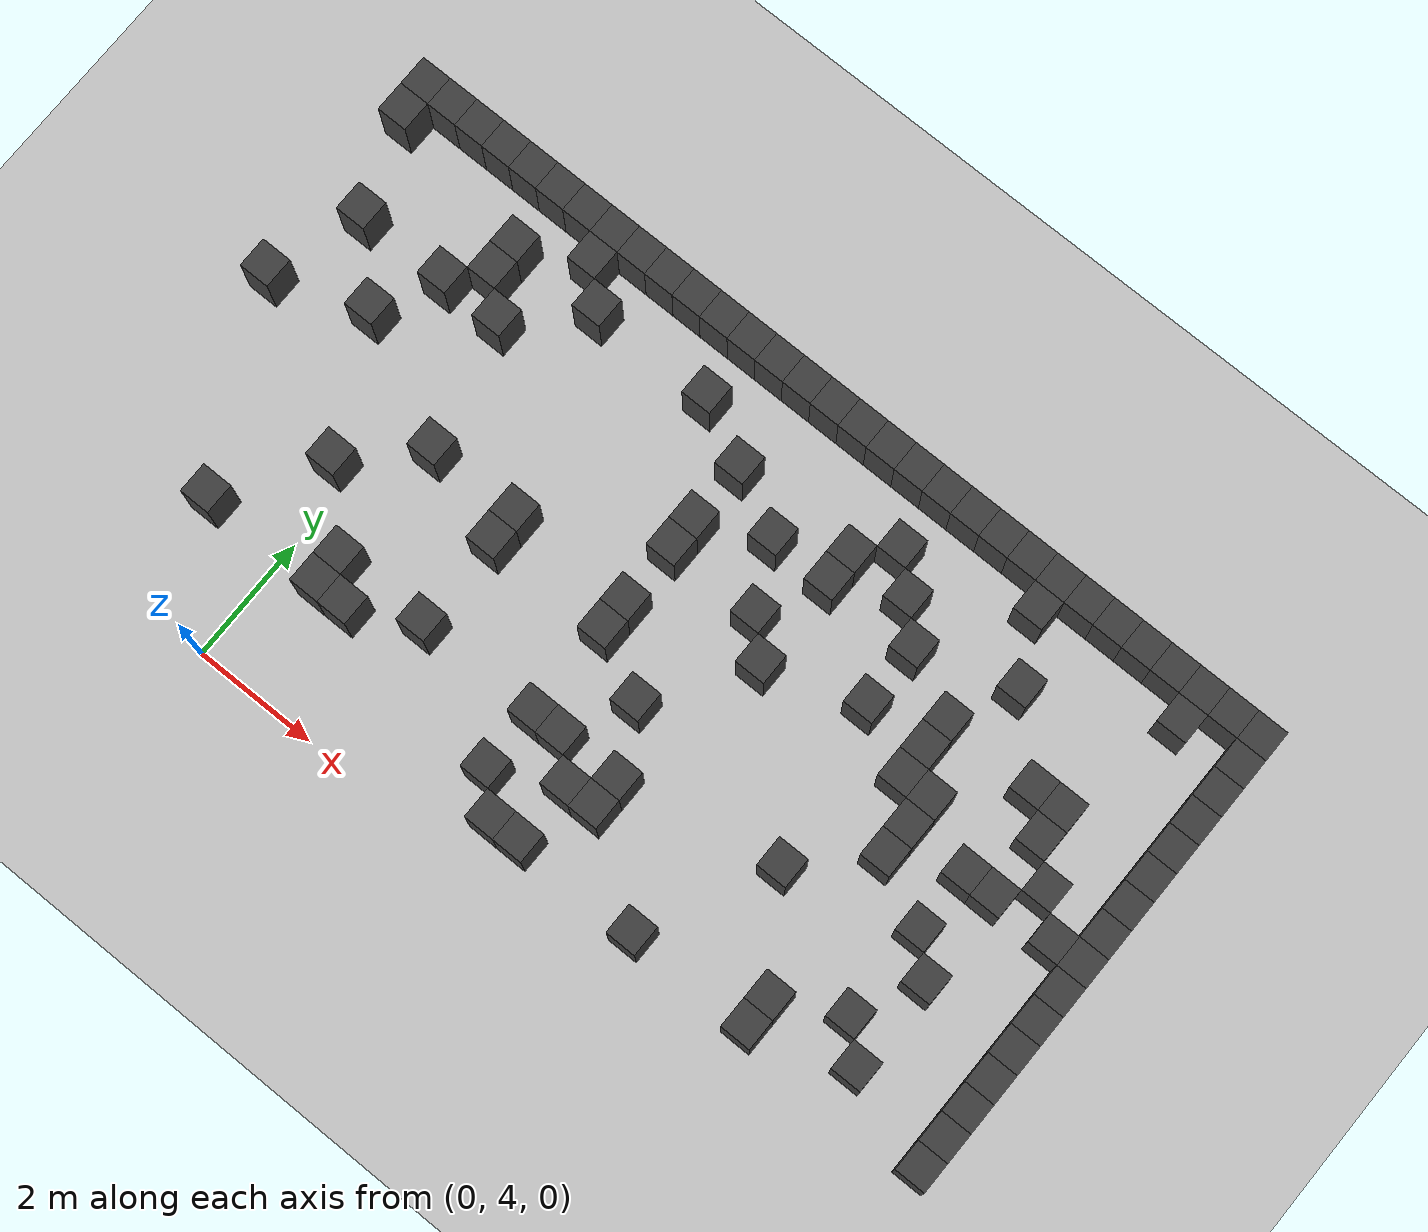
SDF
<sdf version="1.7">
 <world name="map_3158">
  <model name="ground_plane">
   <static>true</static>
   <link name="link">
    <collision name="collision">
     <geometry><plane><normal>0 0 1</normal><size>200 200</size></plane></geometry>
    </collision>
    <visual name="visual">
     <geometry><plane><normal>0 0 1</normal><size>200 200</size></plane></geometry>
     <material><ambient>0.8 0.8 0.8 1</ambient><diffuse>0.8 0.8 0.8 1</diffuse></material>
    </visual>
   </link>
  </model>
  <model name="maze_environment">
   <static>true</static>
   <link name="wall_19">
    <pose>-2.750 12.250 0.500 0 0 0</pose>
    <collision name="col"><geometry><box><size>0.5 0.5 1.0</size></box></geometry></collision>
    <visual name="vis">
     <geometry><box><size>0.5 0.5 1.0</size></box></geometry>
     <material><ambient>0.15 0.15 0.15 1</ambient><diffuse>0.25 0.25 0.25 1</diffuse></material>
    </visual>
   </link>
   <link name="wall_20">
    <pose>-2.250 12.250 0.500 0 0 0</pose>
    <collision name="col"><geometry><box><size>0.5 0.5 1.0</size></box></geometry></collision>
    <visual name="vis">
     <geometry><box><size>0.5 0.5 1.0</size></box></geometry>
     <material><ambient>0.15 0.15 0.15 1</ambient><diffuse>0.25 0.25 0.25 1</diffuse></material>
    </visual>
   </link>
   <link name="wall_21">
    <pose>-1.750 12.250 0.500 0 0 0</pose>
    <collision name="col"><geometry><box><size>0.5 0.5 1.0</size></box></geometry></collision>
    <visual name="vis">
     <geometry><box><size>0.5 0.5 1.0</size></box></geometry>
     <material><ambient>0.15 0.15 0.15 1</ambient><diffuse>0.25 0.25 0.25 1</diffuse></material>
    </visual>
   </link>
   <link name="wall_22">
    <pose>-1.250 12.250 0.500 0 0 0</pose>
    <collision name="col"><geometry><box><size>0.5 0.5 1.0</size></box></geometry></collision>
    <visual name="vis">
     <geometry><box><size>0.5 0.5 1.0</size></box></geometry>
     <material><ambient>0.15 0.15 0.15 1</ambient><diffuse>0.25 0.25 0.25 1</diffuse></material>
    </visual>
   </link>
   <link name="wall_23">
    <pose>-0.750 12.250 0.500 0 0 0</pose>
    <collision name="col"><geometry><box><size>0.5 0.5 1.0</size></box></geometry></collision>
    <visual name="vis">
     <geometry><box><size>0.5 0.5 1.0</size></box></geometry>
     <material><ambient>0.15 0.15 0.15 1</ambient><diffuse>0.25 0.25 0.25 1</diffuse></material>
    </visual>
   </link>
   <link name="wall_24">
    <pose>-0.250 12.250 0.500 0 0 0</pose>
    <collision name="col"><geometry><box><size>0.5 0.5 1.0</size></box></geometry></collision>
    <visual name="vis">
     <geometry><box><size>0.5 0.5 1.0</size></box></geometry>
     <material><ambient>0.15 0.15 0.15 1</ambient><diffuse>0.25 0.25 0.25 1</diffuse></material>
    </visual>
   </link>
   <link name="wall_25">
    <pose>0.250 12.250 0.500 0 0 0</pose>
    <collision name="col"><geometry><box><size>0.5 0.5 1.0</size></box></geometry></collision>
    <visual name="vis">
     <geometry><box><size>0.5 0.5 1.0</size></box></geometry>
     <material><ambient>0.15 0.15 0.15 1</ambient><diffuse>0.25 0.25 0.25 1</diffuse></material>
    </visual>
   </link>
   <link name="wall_26">
    <pose>0.750 12.250 0.500 0 0 0</pose>
    <collision name="col"><geometry><box><size>0.5 0.5 1.0</size></box></geometry></collision>
    <visual name="vis">
     <geometry><box><size>0.5 0.5 1.0</size></box></geometry>
     <material><ambient>0.15 0.15 0.15 1</ambient><diffuse>0.25 0.25 0.25 1</diffuse></material>
    </visual>
   </link>
   <link name="wall_27">
    <pose>1.250 12.250 0.500 0 0 0</pose>
    <collision name="col"><geometry><box><size>0.5 0.5 1.0</size></box></geometry></collision>
    <visual name="vis">
     <geometry><box><size>0.5 0.5 1.0</size></box></geometry>
     <material><ambient>0.15 0.15 0.15 1</ambient><diffuse>0.25 0.25 0.25 1</diffuse></material>
    </visual>
   </link>
   <link name="wall_28">
    <pose>1.750 12.250 0.500 0 0 0</pose>
    <collision name="col"><geometry><box><size>0.5 0.5 1.0</size></box></geometry></collision>
    <visual name="vis">
     <geometry><box><size>0.5 0.5 1.0</size></box></geometry>
     <material><ambient>0.15 0.15 0.15 1</ambient><diffuse>0.25 0.25 0.25 1</diffuse></material>
    </visual>
   </link>
   <link name="wall_29">
    <pose>2.250 12.250 0.500 0 0 0</pose>
    <collision name="col"><geometry><box><size>0.5 0.5 1.0</size></box></geometry></collision>
    <visual name="vis">
     <geometry><box><size>0.5 0.5 1.0</size></box></geometry>
     <material><ambient>0.15 0.15 0.15 1</ambient><diffuse>0.25 0.25 0.25 1</diffuse></material>
    </visual>
   </link>
   <link name="wall_30">
    <pose>2.750 12.250 0.500 0 0 0</pose>
    <collision name="col"><geometry><box><size>0.5 0.5 1.0</size></box></geometry></collision>
    <visual name="vis">
     <geometry><box><size>0.5 0.5 1.0</size></box></geometry>
     <material><ambient>0.15 0.15 0.15 1</ambient><diffuse>0.25 0.25 0.25 1</diffuse></material>
    </visual>
   </link>
   <link name="wall_31">
    <pose>3.250 12.250 0.500 0 0 0</pose>
    <collision name="col"><geometry><box><size>0.5 0.5 1.0</size></box></geometry></collision>
    <visual name="vis">
     <geometry><box><size>0.5 0.5 1.0</size></box></geometry>
     <material><ambient>0.15 0.15 0.15 1</ambient><diffuse>0.25 0.25 0.25 1</diffuse></material>
    </visual>
   </link>
   <link name="wall_32">
    <pose>3.750 12.250 0.500 0 0 0</pose>
    <collision name="col"><geometry><box><size>0.5 0.5 1.0</size></box></geometry></collision>
    <visual name="vis">
     <geometry><box><size>0.5 0.5 1.0</size></box></geometry>
     <material><ambient>0.15 0.15 0.15 1</ambient><diffuse>0.25 0.25 0.25 1</diffuse></material>
    </visual>
   </link>
   <link name="wall_33">
    <pose>4.250 12.250 0.500 0 0 0</pose>
    <collision name="col"><geometry><box><size>0.5 0.5 1.0</size></box></geometry></collision>
    <visual name="vis">
     <geometry><box><size>0.5 0.5 1.0</size></box></geometry>
     <material><ambient>0.15 0.15 0.15 1</ambient><diffuse>0.25 0.25 0.25 1</diffuse></material>
    </visual>
   </link>
   <link name="wall_34">
    <pose>4.750 12.250 0.500 0 0 0</pose>
    <collision name="col"><geometry><box><size>0.5 0.5 1.0</size></box></geometry></collision>
    <visual name="vis">
     <geometry><box><size>0.5 0.5 1.0</size></box></geometry>
     <material><ambient>0.15 0.15 0.15 1</ambient><diffuse>0.25 0.25 0.25 1</diffuse></material>
    </visual>
   </link>
   <link name="wall_35">
    <pose>5.250 12.250 0.500 0 0 0</pose>
    <collision name="col"><geometry><box><size>0.5 0.5 1.0</size></box></geometry></collision>
    <visual name="vis">
     <geometry><box><size>0.5 0.5 1.0</size></box></geometry>
     <material><ambient>0.15 0.15 0.15 1</ambient><diffuse>0.25 0.25 0.25 1</diffuse></material>
    </visual>
   </link>
   <link name="wall_36">
    <pose>5.750 12.250 0.500 0 0 0</pose>
    <collision name="col"><geometry><box><size>0.5 0.5 1.0</size></box></geometry></collision>
    <visual name="vis">
     <geometry><box><size>0.5 0.5 1.0</size></box></geometry>
     <material><ambient>0.15 0.15 0.15 1</ambient><diffuse>0.25 0.25 0.25 1</diffuse></material>
    </visual>
   </link>
   <link name="wall_37">
    <pose>6.250 12.250 0.500 0 0 0</pose>
    <collision name="col"><geometry><box><size>0.5 0.5 1.0</size></box></geometry></collision>
    <visual name="vis">
     <geometry><box><size>0.5 0.5 1.0</size></box></geometry>
     <material><ambient>0.15 0.15 0.15 1</ambient><diffuse>0.25 0.25 0.25 1</diffuse></material>
    </visual>
   </link>
   <link name="wall_38">
    <pose>6.750 12.250 0.500 0 0 0</pose>
    <collision name="col"><geometry><box><size>0.5 0.5 1.0</size></box></geometry></collision>
    <visual name="vis">
     <geometry><box><size>0.5 0.5 1.0</size></box></geometry>
     <material><ambient>0.15 0.15 0.15 1</ambient><diffuse>0.25 0.25 0.25 1</diffuse></material>
    </visual>
   </link>
   <link name="wall_39">
    <pose>7.250 12.250 0.500 0 0 0</pose>
    <collision name="col"><geometry><box><size>0.5 0.5 1.0</size></box></geometry></collision>
    <visual name="vis">
     <geometry><box><size>0.5 0.5 1.0</size></box></geometry>
     <material><ambient>0.15 0.15 0.15 1</ambient><diffuse>0.25 0.25 0.25 1</diffuse></material>
    </visual>
   </link>
   <link name="wall_40">
    <pose>7.750 12.250 0.500 0 0 0</pose>
    <collision name="col"><geometry><box><size>0.5 0.5 1.0</size></box></geometry></collision>
    <visual name="vis">
     <geometry><box><size>0.5 0.5 1.0</size></box></geometry>
     <material><ambient>0.15 0.15 0.15 1</ambient><diffuse>0.25 0.25 0.25 1</diffuse></material>
    </visual>
   </link>
   <link name="wall_41">
    <pose>8.250 12.250 0.500 0 0 0</pose>
    <collision name="col"><geometry><box><size>0.5 0.5 1.0</size></box></geometry></collision>
    <visual name="vis">
     <geometry><box><size>0.5 0.5 1.0</size></box></geometry>
     <material><ambient>0.15 0.15 0.15 1</ambient><diffuse>0.25 0.25 0.25 1</diffuse></material>
    </visual>
   </link>
   <link name="wall_42">
    <pose>8.750 12.250 0.500 0 0 0</pose>
    <collision name="col"><geometry><box><size>0.5 0.5 1.0</size></box></geometry></collision>
    <visual name="vis">
     <geometry><box><size>0.5 0.5 1.0</size></box></geometry>
     <material><ambient>0.15 0.15 0.15 1</ambient><diffuse>0.25 0.25 0.25 1</diffuse></material>
    </visual>
   </link>
   <link name="wall_43">
    <pose>9.250 12.250 0.500 0 0 0</pose>
    <collision name="col"><geometry><box><size>0.5 0.5 1.0</size></box></geometry></collision>
    <visual name="vis">
     <geometry><box><size>0.5 0.5 1.0</size></box></geometry>
     <material><ambient>0.15 0.15 0.15 1</ambient><diffuse>0.25 0.25 0.25 1</diffuse></material>
    </visual>
   </link>
   <link name="wall_44">
    <pose>9.750 12.250 0.500 0 0 0</pose>
    <collision name="col"><geometry><box><size>0.5 0.5 1.0</size></box></geometry></collision>
    <visual name="vis">
     <geometry><box><size>0.5 0.5 1.0</size></box></geometry>
     <material><ambient>0.15 0.15 0.15 1</ambient><diffuse>0.25 0.25 0.25 1</diffuse></material>
    </visual>
   </link>
   <link name="wall_45">
    <pose>10.250 12.250 0.500 0 0 0</pose>
    <collision name="col"><geometry><box><size>0.5 0.5 1.0</size></box></geometry></collision>
    <visual name="vis">
     <geometry><box><size>0.5 0.5 1.0</size></box></geometry>
     <material><ambient>0.15 0.15 0.15 1</ambient><diffuse>0.25 0.25 0.25 1</diffuse></material>
    </visual>
   </link>
   <link name="wall_46">
    <pose>10.750 12.250 0.500 0 0 0</pose>
    <collision name="col"><geometry><box><size>0.5 0.5 1.0</size></box></geometry></collision>
    <visual name="vis">
     <geometry><box><size>0.5 0.5 1.0</size></box></geometry>
     <material><ambient>0.15 0.15 0.15 1</ambient><diffuse>0.25 0.25 0.25 1</diffuse></material>
    </visual>
   </link>
   <link name="wall_47">
    <pose>11.250 12.250 0.500 0 0 0</pose>
    <collision name="col"><geometry><box><size>0.5 0.5 1.0</size></box></geometry></collision>
    <visual name="vis">
     <geometry><box><size>0.5 0.5 1.0</size></box></geometry>
     <material><ambient>0.15 0.15 0.15 1</ambient><diffuse>0.25 0.25 0.25 1</diffuse></material>
    </visual>
   </link>
   <link name="wall_48">
    <pose>11.750 12.250 0.500 0 0 0</pose>
    <collision name="col"><geometry><box><size>0.5 0.5 1.0</size></box></geometry></collision>
    <visual name="vis">
     <geometry><box><size>0.5 0.5 1.0</size></box></geometry>
     <material><ambient>0.15 0.15 0.15 1</ambient><diffuse>0.25 0.25 0.25 1</diffuse></material>
    </visual>
   </link>
   <link name="wall_49">
    <pose>12.250 12.250 0.500 0 0 0</pose>
    <collision name="col"><geometry><box><size>0.5 0.5 1.0</size></box></geometry></collision>
    <visual name="vis">
     <geometry><box><size>0.5 0.5 1.0</size></box></geometry>
     <material><ambient>0.15 0.15 0.15 1</ambient><diffuse>0.25 0.25 0.25 1</diffuse></material>
    </visual>
   </link>
   <link name="wall_56">
    <pose>-2.750 11.750 0.500 0 0 0</pose>
    <collision name="col"><geometry><box><size>0.5 0.5 1.0</size></box></geometry></collision>
    <visual name="vis">
     <geometry><box><size>0.5 0.5 1.0</size></box></geometry>
     <material><ambient>0.15 0.15 0.15 1</ambient><diffuse>0.25 0.25 0.25 1</diffuse></material>
    </visual>
   </link>
   <link name="wall_57">
    <pose>0.750 11.750 0.500 0 0 0</pose>
    <collision name="col"><geometry><box><size>0.5 0.5 1.0</size></box></geometry></collision>
    <visual name="vis">
     <geometry><box><size>0.5 0.5 1.0</size></box></geometry>
     <material><ambient>0.15 0.15 0.15 1</ambient><diffuse>0.25 0.25 0.25 1</diffuse></material>
    </visual>
   </link>
   <link name="wall_58">
    <pose>8.750 11.750 0.500 0 0 0</pose>
    <collision name="col"><geometry><box><size>0.5 0.5 1.0</size></box></geometry></collision>
    <visual name="vis">
     <geometry><box><size>0.5 0.5 1.0</size></box></geometry>
     <material><ambient>0.15 0.15 0.15 1</ambient><diffuse>0.25 0.25 0.25 1</diffuse></material>
    </visual>
   </link>
   <link name="wall_59">
    <pose>11.250 11.750 0.500 0 0 0</pose>
    <collision name="col"><geometry><box><size>0.5 0.5 1.0</size></box></geometry></collision>
    <visual name="vis">
     <geometry><box><size>0.5 0.5 1.0</size></box></geometry>
     <material><ambient>0.15 0.15 0.15 1</ambient><diffuse>0.25 0.25 0.25 1</diffuse></material>
    </visual>
   </link>
   <link name="wall_60">
    <pose>12.250 11.750 0.500 0 0 0</pose>
    <collision name="col"><geometry><box><size>0.5 0.5 1.0</size></box></geometry></collision>
    <visual name="vis">
     <geometry><box><size>0.5 0.5 1.0</size></box></geometry>
     <material><ambient>0.15 0.15 0.15 1</ambient><diffuse>0.25 0.25 0.25 1</diffuse></material>
    </visual>
   </link>
   <link name="wall_64">
    <pose>-0.250 11.250 0.500 0 0 0</pose>
    <collision name="col"><geometry><box><size>0.5 0.5 1.0</size></box></geometry></collision>
    <visual name="vis">
     <geometry><box><size>0.5 0.5 1.0</size></box></geometry>
     <material><ambient>0.15 0.15 0.15 1</ambient><diffuse>0.25 0.25 0.25 1</diffuse></material>
    </visual>
   </link>
   <link name="wall_65">
    <pose>1.250 11.250 0.500 0 0 0</pose>
    <collision name="col"><geometry><box><size>0.5 0.5 1.0</size></box></geometry></collision>
    <visual name="vis">
     <geometry><box><size>0.5 0.5 1.0</size></box></geometry>
     <material><ambient>0.15 0.15 0.15 1</ambient><diffuse>0.25 0.25 0.25 1</diffuse></material>
    </visual>
   </link>
   <link name="wall_66">
    <pose>3.250 11.250 0.500 0 0 0</pose>
    <collision name="col"><geometry><box><size>0.5 0.5 1.0</size></box></geometry></collision>
    <visual name="vis">
     <geometry><box><size>0.5 0.5 1.0</size></box></geometry>
     <material><ambient>0.15 0.15 0.15 1</ambient><diffuse>0.25 0.25 0.25 1</diffuse></material>
    </visual>
   </link>
   <link name="wall_67">
    <pose>6.750 11.250 0.500 0 0 0</pose>
    <collision name="col"><geometry><box><size>0.5 0.5 1.0</size></box></geometry></collision>
    <visual name="vis">
     <geometry><box><size>0.5 0.5 1.0</size></box></geometry>
     <material><ambient>0.15 0.15 0.15 1</ambient><diffuse>0.25 0.25 0.25 1</diffuse></material>
    </visual>
   </link>
   <link name="wall_68">
    <pose>12.250 11.250 0.500 0 0 0</pose>
    <collision name="col"><geometry><box><size>0.5 0.5 1.0</size></box></geometry></collision>
    <visual name="vis">
     <geometry><box><size>0.5 0.5 1.0</size></box></geometry>
     <material><ambient>0.15 0.15 0.15 1</ambient><diffuse>0.25 0.25 0.25 1</diffuse></material>
    </visual>
   </link>
   <link name="wall_73">
    <pose>-0.250 10.750 0.500 0 0 0</pose>
    <collision name="col"><geometry><box><size>0.5 0.5 1.0</size></box></geometry></collision>
    <visual name="vis">
     <geometry><box><size>0.5 0.5 1.0</size></box></geometry>
     <material><ambient>0.15 0.15 0.15 1</ambient><diffuse>0.25 0.25 0.25 1</diffuse></material>
    </visual>
   </link>
   <link name="wall_74">
    <pose>4.250 10.750 0.500 0 0 0</pose>
    <collision name="col"><geometry><box><size>0.5 0.5 1.0</size></box></geometry></collision>
    <visual name="vis">
     <geometry><box><size>0.5 0.5 1.0</size></box></geometry>
     <material><ambient>0.15 0.15 0.15 1</ambient><diffuse>0.25 0.25 0.25 1</diffuse></material>
    </visual>
   </link>
   <link name="wall_75">
    <pose>6.250 10.750 0.500 0 0 0</pose>
    <collision name="col"><geometry><box><size>0.5 0.5 1.0</size></box></geometry></collision>
    <visual name="vis">
     <geometry><box><size>0.5 0.5 1.0</size></box></geometry>
     <material><ambient>0.15 0.15 0.15 1</ambient><diffuse>0.25 0.25 0.25 1</diffuse></material>
    </visual>
   </link>
   <link name="wall_76">
    <pose>7.250 10.750 0.500 0 0 0</pose>
    <collision name="col"><geometry><box><size>0.5 0.5 1.0</size></box></geometry></collision>
    <visual name="vis">
     <geometry><box><size>0.5 0.5 1.0</size></box></geometry>
     <material><ambient>0.15 0.15 0.15 1</ambient><diffuse>0.25 0.25 0.25 1</diffuse></material>
    </visual>
   </link>
   <link name="wall_77">
    <pose>9.250 10.750 0.500 0 0 0</pose>
    <collision name="col"><geometry><box><size>0.5 0.5 1.0</size></box></geometry></collision>
    <visual name="vis">
     <geometry><box><size>0.5 0.5 1.0</size></box></geometry>
     <material><ambient>0.15 0.15 0.15 1</ambient><diffuse>0.25 0.25 0.25 1</diffuse></material>
    </visual>
   </link>
   <link name="wall_78">
    <pose>12.250 10.750 0.500 0 0 0</pose>
    <collision name="col"><geometry><box><size>0.5 0.5 1.0</size></box></geometry></collision>
    <visual name="vis">
     <geometry><box><size>0.5 0.5 1.0</size></box></geometry>
     <material><ambient>0.15 0.15 0.15 1</ambient><diffuse>0.25 0.25 0.25 1</diffuse></material>
    </visual>
   </link>
   <link name="wall_84">
    <pose>-2.250 10.250 0.500 0 0 0</pose>
    <collision name="col"><geometry><box><size>0.5 0.5 1.0</size></box></geometry></collision>
    <visual name="vis">
     <geometry><box><size>0.5 0.5 1.0</size></box></geometry>
     <material><ambient>0.15 0.15 0.15 1</ambient><diffuse>0.25 0.25 0.25 1</diffuse></material>
    </visual>
   </link>
   <link name="wall_85">
    <pose>-0.750 10.250 0.500 0 0 0</pose>
    <collision name="col"><geometry><box><size>0.5 0.5 1.0</size></box></geometry></collision>
    <visual name="vis">
     <geometry><box><size>0.5 0.5 1.0</size></box></geometry>
     <material><ambient>0.15 0.15 0.15 1</ambient><diffuse>0.25 0.25 0.25 1</diffuse></material>
    </visual>
   </link>
   <link name="wall_86">
    <pose>0.250 10.250 0.500 0 0 0</pose>
    <collision name="col"><geometry><box><size>0.5 0.5 1.0</size></box></geometry></collision>
    <visual name="vis">
     <geometry><box><size>0.5 0.5 1.0</size></box></geometry>
     <material><ambient>0.15 0.15 0.15 1</ambient><diffuse>0.25 0.25 0.25 1</diffuse></material>
    </visual>
   </link>
   <link name="wall_87">
    <pose>5.250 10.250 0.500 0 0 0</pose>
    <collision name="col"><geometry><box><size>0.5 0.5 1.0</size></box></geometry></collision>
    <visual name="vis">
     <geometry><box><size>0.5 0.5 1.0</size></box></geometry>
     <material><ambient>0.15 0.15 0.15 1</ambient><diffuse>0.25 0.25 0.25 1</diffuse></material>
    </visual>
   </link>
   <link name="wall_88">
    <pose>6.250 10.250 0.500 0 0 0</pose>
    <collision name="col"><geometry><box><size>0.5 0.5 1.0</size></box></geometry></collision>
    <visual name="vis">
     <geometry><box><size>0.5 0.5 1.0</size></box></geometry>
     <material><ambient>0.15 0.15 0.15 1</ambient><diffuse>0.25 0.25 0.25 1</diffuse></material>
    </visual>
   </link>
   <link name="wall_89">
    <pose>7.750 10.250 0.500 0 0 0</pose>
    <collision name="col"><geometry><box><size>0.5 0.5 1.0</size></box></geometry></collision>
    <visual name="vis">
     <geometry><box><size>0.5 0.5 1.0</size></box></geometry>
     <material><ambient>0.15 0.15 0.15 1</ambient><diffuse>0.25 0.25 0.25 1</diffuse></material>
    </visual>
   </link>
   <link name="wall_90">
    <pose>12.250 10.250 0.500 0 0 0</pose>
    <collision name="col"><geometry><box><size>0.5 0.5 1.0</size></box></geometry></collision>
    <visual name="vis">
     <geometry><box><size>0.5 0.5 1.0</size></box></geometry>
     <material><ambient>0.15 0.15 0.15 1</ambient><diffuse>0.25 0.25 0.25 1</diffuse></material>
    </visual>
   </link>
   <link name="wall_94">
    <pose>4.250 9.750 0.500 0 0 0</pose>
    <collision name="col"><geometry><box><size>0.5 0.5 1.0</size></box></geometry></collision>
    <visual name="vis">
     <geometry><box><size>0.5 0.5 1.0</size></box></geometry>
     <material><ambient>0.15 0.15 0.15 1</ambient><diffuse>0.25 0.25 0.25 1</diffuse></material>
    </visual>
   </link>
   <link name="wall_95">
    <pose>8.750 9.750 0.500 0 0 0</pose>
    <collision name="col"><geometry><box><size>0.5 0.5 1.0</size></box></geometry></collision>
    <visual name="vis">
     <geometry><box><size>0.5 0.5 1.0</size></box></geometry>
     <material><ambient>0.15 0.15 0.15 1</ambient><diffuse>0.25 0.25 0.25 1</diffuse></material>
    </visual>
   </link>
   <link name="wall_96">
    <pose>10.250 9.750 0.500 0 0 0</pose>
    <collision name="col"><geometry><box><size>0.5 0.5 1.0</size></box></geometry></collision>
    <visual name="vis">
     <geometry><box><size>0.5 0.5 1.0</size></box></geometry>
     <material><ambient>0.15 0.15 0.15 1</ambient><diffuse>0.25 0.25 0.25 1</diffuse></material>
    </visual>
   </link>
   <link name="wall_97">
    <pose>10.750 9.750 0.500 0 0 0</pose>
    <collision name="col"><geometry><box><size>0.5 0.5 1.0</size></box></geometry></collision>
    <visual name="vis">
     <geometry><box><size>0.5 0.5 1.0</size></box></geometry>
     <material><ambient>0.15 0.15 0.15 1</ambient><diffuse>0.25 0.25 0.25 1</diffuse></material>
    </visual>
   </link>
   <link name="wall_98">
    <pose>12.250 9.750 0.500 0 0 0</pose>
    <collision name="col"><geometry><box><size>0.5 0.5 1.0</size></box></geometry></collision>
    <visual name="vis">
     <geometry><box><size>0.5 0.5 1.0</size></box></geometry>
     <material><ambient>0.15 0.15 0.15 1</ambient><diffuse>0.25 0.25 0.25 1</diffuse></material>
    </visual>
   </link>
   <link name="wall_103">
    <pose>-1.250 9.250 0.500 0 0 0</pose>
    <collision name="col"><geometry><box><size>0.5 0.5 1.0</size></box></geometry></collision>
    <visual name="vis">
     <geometry><box><size>0.5 0.5 1.0</size></box></geometry>
     <material><ambient>0.15 0.15 0.15 1</ambient><diffuse>0.25 0.25 0.25 1</diffuse></material>
    </visual>
   </link>
   <link name="wall_104">
    <pose>4.250 9.250 0.500 0 0 0</pose>
    <collision name="col"><geometry><box><size>0.5 0.5 1.0</size></box></geometry></collision>
    <visual name="vis">
     <geometry><box><size>0.5 0.5 1.0</size></box></geometry>
     <material><ambient>0.15 0.15 0.15 1</ambient><diffuse>0.25 0.25 0.25 1</diffuse></material>
    </visual>
   </link>
   <link name="wall_105">
    <pose>5.750 9.250 0.500 0 0 0</pose>
    <collision name="col"><geometry><box><size>0.5 0.5 1.0</size></box></geometry></collision>
    <visual name="vis">
     <geometry><box><size>0.5 0.5 1.0</size></box></geometry>
     <material><ambient>0.15 0.15 0.15 1</ambient><diffuse>0.25 0.25 0.25 1</diffuse></material>
    </visual>
   </link>
   <link name="wall_106">
    <pose>7.750 9.250 0.500 0 0 0</pose>
    <collision name="col"><geometry><box><size>0.5 0.5 1.0</size></box></geometry></collision>
    <visual name="vis">
     <geometry><box><size>0.5 0.5 1.0</size></box></geometry>
     <material><ambient>0.15 0.15 0.15 1</ambient><diffuse>0.25 0.25 0.25 1</diffuse></material>
    </visual>
   </link>
   <link name="wall_107">
    <pose>8.750 9.250 0.500 0 0 0</pose>
    <collision name="col"><geometry><box><size>0.5 0.5 1.0</size></box></geometry></collision>
    <visual name="vis">
     <geometry><box><size>0.5 0.5 1.0</size></box></geometry>
     <material><ambient>0.15 0.15 0.15 1</ambient><diffuse>0.25 0.25 0.25 1</diffuse></material>
    </visual>
   </link>
   <link name="wall_108">
    <pose>10.750 9.250 0.500 0 0 0</pose>
    <collision name="col"><geometry><box><size>0.5 0.5 1.0</size></box></geometry></collision>
    <visual name="vis">
     <geometry><box><size>0.5 0.5 1.0</size></box></geometry>
     <material><ambient>0.15 0.15 0.15 1</ambient><diffuse>0.25 0.25 0.25 1</diffuse></material>
    </visual>
   </link>
   <link name="wall_109">
    <pose>12.250 9.250 0.500 0 0 0</pose>
    <collision name="col"><geometry><box><size>0.5 0.5 1.0</size></box></geometry></collision>
    <visual name="vis">
     <geometry><box><size>0.5 0.5 1.0</size></box></geometry>
     <material><ambient>0.15 0.15 0.15 1</ambient><diffuse>0.25 0.25 0.25 1</diffuse></material>
    </visual>
   </link>
   <link name="wall_112">
    <pose>-2.750 8.750 0.500 0 0 0</pose>
    <collision name="col"><geometry><box><size>0.5 0.5 1.0</size></box></geometry></collision>
    <visual name="vis">
     <geometry><box><size>0.5 0.5 1.0</size></box></geometry>
     <material><ambient>0.15 0.15 0.15 1</ambient><diffuse>0.25 0.25 0.25 1</diffuse></material>
    </visual>
   </link>
   <link name="wall_113">
    <pose>6.250 8.750 0.500 0 0 0</pose>
    <collision name="col"><geometry><box><size>0.5 0.5 1.0</size></box></geometry></collision>
    <visual name="vis">
     <geometry><box><size>0.5 0.5 1.0</size></box></geometry>
     <material><ambient>0.15 0.15 0.15 1</ambient><diffuse>0.25 0.25 0.25 1</diffuse></material>
    </visual>
   </link>
   <link name="wall_114">
    <pose>8.750 8.750 0.500 0 0 0</pose>
    <collision name="col"><geometry><box><size>0.5 0.5 1.0</size></box></geometry></collision>
    <visual name="vis">
     <geometry><box><size>0.5 0.5 1.0</size></box></geometry>
     <material><ambient>0.15 0.15 0.15 1</ambient><diffuse>0.25 0.25 0.25 1</diffuse></material>
    </visual>
   </link>
   <link name="wall_115">
    <pose>9.250 8.750 0.500 0 0 0</pose>
    <collision name="col"><geometry><box><size>0.5 0.5 1.0</size></box></geometry></collision>
    <visual name="vis">
     <geometry><box><size>0.5 0.5 1.0</size></box></geometry>
     <material><ambient>0.15 0.15 0.15 1</ambient><diffuse>0.25 0.25 0.25 1</diffuse></material>
    </visual>
   </link>
   <link name="wall_116">
    <pose>11.250 8.750 0.500 0 0 0</pose>
    <collision name="col"><geometry><box><size>0.5 0.5 1.0</size></box></geometry></collision>
    <visual name="vis">
     <geometry><box><size>0.5 0.5 1.0</size></box></geometry>
     <material><ambient>0.15 0.15 0.15 1</ambient><diffuse>0.25 0.25 0.25 1</diffuse></material>
    </visual>
   </link>
   <link name="wall_117">
    <pose>12.250 8.750 0.500 0 0 0</pose>
    <collision name="col"><geometry><box><size>0.5 0.5 1.0</size></box></geometry></collision>
    <visual name="vis">
     <geometry><box><size>0.5 0.5 1.0</size></box></geometry>
     <material><ambient>0.15 0.15 0.15 1</ambient><diffuse>0.25 0.25 0.25 1</diffuse></material>
    </visual>
   </link>
   <link name="wall_121">
    <pose>0.750 8.250 0.500 0 0 0</pose>
    <collision name="col"><geometry><box><size>0.5 0.5 1.0</size></box></geometry></collision>
    <visual name="vis">
     <geometry><box><size>0.5 0.5 1.0</size></box></geometry>
     <material><ambient>0.15 0.15 0.15 1</ambient><diffuse>0.25 0.25 0.25 1</diffuse></material>
    </visual>
   </link>
   <link name="wall_122">
    <pose>2.250 8.250 0.500 0 0 0</pose>
    <collision name="col"><geometry><box><size>0.5 0.5 1.0</size></box></geometry></collision>
    <visual name="vis">
     <geometry><box><size>0.5 0.5 1.0</size></box></geometry>
     <material><ambient>0.15 0.15 0.15 1</ambient><diffuse>0.25 0.25 0.25 1</diffuse></material>
    </visual>
   </link>
   <link name="wall_123">
    <pose>4.250 8.250 0.500 0 0 0</pose>
    <collision name="col"><geometry><box><size>0.5 0.5 1.0</size></box></geometry></collision>
    <visual name="vis">
     <geometry><box><size>0.5 0.5 1.0</size></box></geometry>
     <material><ambient>0.15 0.15 0.15 1</ambient><diffuse>0.25 0.25 0.25 1</diffuse></material>
    </visual>
   </link>
   <link name="wall_124">
    <pose>9.250 8.250 0.500 0 0 0</pose>
    <collision name="col"><geometry><box><size>0.5 0.5 1.0</size></box></geometry></collision>
    <visual name="vis">
     <geometry><box><size>0.5 0.5 1.0</size></box></geometry>
     <material><ambient>0.15 0.15 0.15 1</ambient><diffuse>0.25 0.25 0.25 1</diffuse></material>
    </visual>
   </link>
   <link name="wall_125">
    <pose>10.250 8.250 0.500 0 0 0</pose>
    <collision name="col"><geometry><box><size>0.5 0.5 1.0</size></box></geometry></collision>
    <visual name="vis">
     <geometry><box><size>0.5 0.5 1.0</size></box></geometry>
     <material><ambient>0.15 0.15 0.15 1</ambient><diffuse>0.25 0.25 0.25 1</diffuse></material>
    </visual>
   </link>
   <link name="wall_126">
    <pose>10.750 8.250 0.500 0 0 0</pose>
    <collision name="col"><geometry><box><size>0.5 0.5 1.0</size></box></geometry></collision>
    <visual name="vis">
     <geometry><box><size>0.5 0.5 1.0</size></box></geometry>
     <material><ambient>0.15 0.15 0.15 1</ambient><diffuse>0.25 0.25 0.25 1</diffuse></material>
    </visual>
   </link>
   <link name="wall_127">
    <pose>11.750 8.250 0.500 0 0 0</pose>
    <collision name="col"><geometry><box><size>0.5 0.5 1.0</size></box></geometry></collision>
    <visual name="vis">
     <geometry><box><size>0.5 0.5 1.0</size></box></geometry>
     <material><ambient>0.15 0.15 0.15 1</ambient><diffuse>0.25 0.25 0.25 1</diffuse></material>
    </visual>
   </link>
   <link name="wall_128">
    <pose>12.250 8.250 0.500 0 0 0</pose>
    <collision name="col"><geometry><box><size>0.5 0.5 1.0</size></box></geometry></collision>
    <visual name="vis">
     <geometry><box><size>0.5 0.5 1.0</size></box></geometry>
     <material><ambient>0.15 0.15 0.15 1</ambient><diffuse>0.25 0.25 0.25 1</diffuse></material>
    </visual>
   </link>
   <link name="wall_133">
    <pose>2.250 7.750 0.500 0 0 0</pose>
    <collision name="col"><geometry><box><size>0.5 0.5 1.0</size></box></geometry></collision>
    <visual name="vis">
     <geometry><box><size>0.5 0.5 1.0</size></box></geometry>
     <material><ambient>0.15 0.15 0.15 1</ambient><diffuse>0.25 0.25 0.25 1</diffuse></material>
    </visual>
   </link>
   <link name="wall_134">
    <pose>4.250 7.750 0.500 0 0 0</pose>
    <collision name="col"><geometry><box><size>0.5 0.5 1.0</size></box></geometry></collision>
    <visual name="vis">
     <geometry><box><size>0.5 0.5 1.0</size></box></geometry>
     <material><ambient>0.15 0.15 0.15 1</ambient><diffuse>0.25 0.25 0.25 1</diffuse></material>
    </visual>
   </link>
   <link name="wall_135">
    <pose>9.250 7.750 0.500 0 0 0</pose>
    <collision name="col"><geometry><box><size>0.5 0.5 1.0</size></box></geometry></collision>
    <visual name="vis">
     <geometry><box><size>0.5 0.5 1.0</size></box></geometry>
     <material><ambient>0.15 0.15 0.15 1</ambient><diffuse>0.25 0.25 0.25 1</diffuse></material>
    </visual>
   </link>
   <link name="wall_136">
    <pose>12.250 7.750 0.500 0 0 0</pose>
    <collision name="col"><geometry><box><size>0.5 0.5 1.0</size></box></geometry></collision>
    <visual name="vis">
     <geometry><box><size>0.5 0.5 1.0</size></box></geometry>
     <material><ambient>0.15 0.15 0.15 1</ambient><diffuse>0.25 0.25 0.25 1</diffuse></material>
    </visual>
   </link>
   <link name="wall_144">
    <pose>-0.250 7.250 0.500 0 0 0</pose>
    <collision name="col"><geometry><box><size>0.5 0.5 1.0</size></box></geometry></collision>
    <visual name="vis">
     <geometry><box><size>0.5 0.5 1.0</size></box></geometry>
     <material><ambient>0.15 0.15 0.15 1</ambient><diffuse>0.25 0.25 0.25 1</diffuse></material>
    </visual>
   </link>
   <link name="wall_145">
    <pose>5.250 7.250 0.500 0 0 0</pose>
    <collision name="col"><geometry><box><size>0.5 0.5 1.0</size></box></geometry></collision>
    <visual name="vis">
     <geometry><box><size>0.5 0.5 1.0</size></box></geometry>
     <material><ambient>0.15 0.15 0.15 1</ambient><diffuse>0.25 0.25 0.25 1</diffuse></material>
    </visual>
   </link>
   <link name="wall_146">
    <pose>10.250 7.250 0.500 0 0 0</pose>
    <collision name="col"><geometry><box><size>0.5 0.5 1.0</size></box></geometry></collision>
    <visual name="vis">
     <geometry><box><size>0.5 0.5 1.0</size></box></geometry>
     <material><ambient>0.15 0.15 0.15 1</ambient><diffuse>0.25 0.25 0.25 1</diffuse></material>
    </visual>
   </link>
   <link name="wall_147">
    <pose>12.250 7.250 0.500 0 0 0</pose>
    <collision name="col"><geometry><box><size>0.5 0.5 1.0</size></box></geometry></collision>
    <visual name="vis">
     <geometry><box><size>0.5 0.5 1.0</size></box></geometry>
     <material><ambient>0.15 0.15 0.15 1</ambient><diffuse>0.25 0.25 0.25 1</diffuse></material>
    </visual>
   </link>
   <link name="wall_151">
    <pose>8.250 6.750 0.500 0 0 0</pose>
    <collision name="col"><geometry><box><size>0.5 0.5 1.0</size></box></geometry></collision>
    <visual name="vis">
     <geometry><box><size>0.5 0.5 1.0</size></box></geometry>
     <material><ambient>0.15 0.15 0.15 1</ambient><diffuse>0.25 0.25 0.25 1</diffuse></material>
    </visual>
   </link>
   <link name="wall_152">
    <pose>10.750 6.750 0.500 0 0 0</pose>
    <collision name="col"><geometry><box><size>0.5 0.5 1.0</size></box></geometry></collision>
    <visual name="vis">
     <geometry><box><size>0.5 0.5 1.0</size></box></geometry>
     <material><ambient>0.15 0.15 0.15 1</ambient><diffuse>0.25 0.25 0.25 1</diffuse></material>
    </visual>
   </link>
   <link name="wall_153">
    <pose>12.250 6.750 0.500 0 0 0</pose>
    <collision name="col"><geometry><box><size>0.5 0.5 1.0</size></box></geometry></collision>
    <visual name="vis">
     <geometry><box><size>0.5 0.5 1.0</size></box></geometry>
     <material><ambient>0.15 0.15 0.15 1</ambient><diffuse>0.25 0.25 0.25 1</diffuse></material>
    </visual>
   </link>
   <link name="wall_158">
    <pose>0.750 6.250 0.500 0 0 0</pose>
    <collision name="col"><geometry><box><size>0.5 0.5 1.0</size></box></geometry></collision>
    <visual name="vis">
     <geometry><box><size>0.5 0.5 1.0</size></box></geometry>
     <material><ambient>0.15 0.15 0.15 1</ambient><diffuse>0.25 0.25 0.25 1</diffuse></material>
    </visual>
   </link>
   <link name="wall_159">
    <pose>2.250 6.250 0.500 0 0 0</pose>
    <collision name="col"><geometry><box><size>0.5 0.5 1.0</size></box></geometry></collision>
    <visual name="vis">
     <geometry><box><size>0.5 0.5 1.0</size></box></geometry>
     <material><ambient>0.15 0.15 0.15 1</ambient><diffuse>0.25 0.25 0.25 1</diffuse></material>
    </visual>
   </link>
   <link name="wall_160">
    <pose>4.250 6.250 0.500 0 0 0</pose>
    <collision name="col"><geometry><box><size>0.5 0.5 1.0</size></box></geometry></collision>
    <visual name="vis">
     <geometry><box><size>0.5 0.5 1.0</size></box></geometry>
     <material><ambient>0.15 0.15 0.15 1</ambient><diffuse>0.25 0.25 0.25 1</diffuse></material>
    </visual>
   </link>
   <link name="wall_161">
    <pose>4.750 6.250 0.500 0 0 0</pose>
    <collision name="col"><geometry><box><size>0.5 0.5 1.0</size></box></geometry></collision>
    <visual name="vis">
     <geometry><box><size>0.5 0.5 1.0</size></box></geometry>
     <material><ambient>0.15 0.15 0.15 1</ambient><diffuse>0.25 0.25 0.25 1</diffuse></material>
    </visual>
   </link>
   <link name="wall_162">
    <pose>5.750 6.250 0.500 0 0 0</pose>
    <collision name="col"><geometry><box><size>0.5 0.5 1.0</size></box></geometry></collision>
    <visual name="vis">
     <geometry><box><size>0.5 0.5 1.0</size></box></geometry>
     <material><ambient>0.15 0.15 0.15 1</ambient><diffuse>0.25 0.25 0.25 1</diffuse></material>
    </visual>
   </link>
   <link name="wall_163">
    <pose>12.250 6.250 0.500 0 0 0</pose>
    <collision name="col"><geometry><box><size>0.5 0.5 1.0</size></box></geometry></collision>
    <visual name="vis">
     <geometry><box><size>0.5 0.5 1.0</size></box></geometry>
     <material><ambient>0.15 0.15 0.15 1</ambient><diffuse>0.25 0.25 0.25 1</diffuse></material>
    </visual>
   </link>
   <link name="wall_169">
    <pose>-1.250 5.750 0.500 0 0 0</pose>
    <collision name="col"><geometry><box><size>0.5 0.5 1.0</size></box></geometry></collision>
    <visual name="vis">
     <geometry><box><size>0.5 0.5 1.0</size></box></geometry>
     <material><ambient>0.15 0.15 0.15 1</ambient><diffuse>0.25 0.25 0.25 1</diffuse></material>
    </visual>
   </link>
   <link name="wall_170">
    <pose>0.750 5.750 0.500 0 0 0</pose>
    <collision name="col"><geometry><box><size>0.5 0.5 1.0</size></box></geometry></collision>
    <visual name="vis">
     <geometry><box><size>0.5 0.5 1.0</size></box></geometry>
     <material><ambient>0.15 0.15 0.15 1</ambient><diffuse>0.25 0.25 0.25 1</diffuse></material>
    </visual>
   </link>
   <link name="wall_171">
    <pose>1.250 5.750 0.500 0 0 0</pose>
    <collision name="col"><geometry><box><size>0.5 0.5 1.0</size></box></geometry></collision>
    <visual name="vis">
     <geometry><box><size>0.5 0.5 1.0</size></box></geometry>
     <material><ambient>0.15 0.15 0.15 1</ambient><diffuse>0.25 0.25 0.25 1</diffuse></material>
    </visual>
   </link>
   <link name="wall_172">
    <pose>5.250 5.750 0.500 0 0 0</pose>
    <collision name="col"><geometry><box><size>0.5 0.5 1.0</size></box></geometry></collision>
    <visual name="vis">
     <geometry><box><size>0.5 0.5 1.0</size></box></geometry>
     <material><ambient>0.15 0.15 0.15 1</ambient><diffuse>0.25 0.25 0.25 1</diffuse></material>
    </visual>
   </link>
   <link name="wall_173">
    <pose>5.750 5.750 0.500 0 0 0</pose>
    <collision name="col"><geometry><box><size>0.5 0.5 1.0</size></box></geometry></collision>
    <visual name="vis">
     <geometry><box><size>0.5 0.5 1.0</size></box></geometry>
     <material><ambient>0.15 0.15 0.15 1</ambient><diffuse>0.25 0.25 0.25 1</diffuse></material>
    </visual>
   </link>
   <link name="wall_174">
    <pose>10.250 5.750 0.500 0 0 0</pose>
    <collision name="col"><geometry><box><size>0.5 0.5 1.0</size></box></geometry></collision>
    <visual name="vis">
     <geometry><box><size>0.5 0.5 1.0</size></box></geometry>
     <material><ambient>0.15 0.15 0.15 1</ambient><diffuse>0.25 0.25 0.25 1</diffuse></material>
    </visual>
   </link>
   <link name="wall_175">
    <pose>12.250 5.750 0.500 0 0 0</pose>
    <collision name="col"><geometry><box><size>0.5 0.5 1.0</size></box></geometry></collision>
    <visual name="vis">
     <geometry><box><size>0.5 0.5 1.0</size></box></geometry>
     <material><ambient>0.15 0.15 0.15 1</ambient><diffuse>0.25 0.25 0.25 1</diffuse></material>
    </visual>
   </link>
   <link name="wall_178">
    <pose>4.250 5.250 0.500 0 0 0</pose>
    <collision name="col"><geometry><box><size>0.5 0.5 1.0</size></box></geometry></collision>
    <visual name="vis">
     <geometry><box><size>0.5 0.5 1.0</size></box></geometry>
     <material><ambient>0.15 0.15 0.15 1</ambient><diffuse>0.25 0.25 0.25 1</diffuse></material>
    </visual>
   </link>
   <link name="wall_179">
    <pose>9.250 5.250 0.500 0 0 0</pose>
    <collision name="col"><geometry><box><size>0.5 0.5 1.0</size></box></geometry></collision>
    <visual name="vis">
     <geometry><box><size>0.5 0.5 1.0</size></box></geometry>
     <material><ambient>0.15 0.15 0.15 1</ambient><diffuse>0.25 0.25 0.25 1</diffuse></material>
    </visual>
   </link>
   <link name="wall_180">
    <pose>10.750 5.250 0.500 0 0 0</pose>
    <collision name="col"><geometry><box><size>0.5 0.5 1.0</size></box></geometry></collision>
    <visual name="vis">
     <geometry><box><size>0.5 0.5 1.0</size></box></geometry>
     <material><ambient>0.15 0.15 0.15 1</ambient><diffuse>0.25 0.25 0.25 1</diffuse></material>
    </visual>
   </link>
   <link name="wall_181">
    <pose>12.250 5.250 0.500 0 0 0</pose>
    <collision name="col"><geometry><box><size>0.5 0.5 1.0</size></box></geometry></collision>
    <visual name="vis">
     <geometry><box><size>0.5 0.5 1.0</size></box></geometry>
     <material><ambient>0.15 0.15 0.15 1</ambient><diffuse>0.25 0.25 0.25 1</diffuse></material>
    </visual>
   </link>
   <link name="wall_192">
    <pose>4.750 4.750 0.500 0 0 0</pose>
    <collision name="col"><geometry><box><size>0.5 0.5 1.0</size></box></geometry></collision>
    <visual name="vis">
     <geometry><box><size>0.5 0.5 1.0</size></box></geometry>
     <material><ambient>0.15 0.15 0.15 1</ambient><diffuse>0.25 0.25 0.25 1</diffuse></material>
    </visual>
   </link>
   <link name="wall_193">
    <pose>5.250 4.750 0.500 0 0 0</pose>
    <collision name="col"><geometry><box><size>0.5 0.5 1.0</size></box></geometry></collision>
    <visual name="vis">
     <geometry><box><size>0.5 0.5 1.0</size></box></geometry>
     <material><ambient>0.15 0.15 0.15 1</ambient><diffuse>0.25 0.25 0.25 1</diffuse></material>
    </visual>
   </link>
   <link name="wall_194">
    <pose>7.250 4.750 0.500 0 0 0</pose>
    <collision name="col"><geometry><box><size>0.5 0.5 1.0</size></box></geometry></collision>
    <visual name="vis">
     <geometry><box><size>0.5 0.5 1.0</size></box></geometry>
     <material><ambient>0.15 0.15 0.15 1</ambient><diffuse>0.25 0.25 0.25 1</diffuse></material>
    </visual>
   </link>
   <link name="wall_195">
    <pose>9.250 4.750 0.500 0 0 0</pose>
    <collision name="col"><geometry><box><size>0.5 0.5 1.0</size></box></geometry></collision>
    <visual name="vis">
     <geometry><box><size>0.5 0.5 1.0</size></box></geometry>
     <material><ambient>0.15 0.15 0.15 1</ambient><diffuse>0.25 0.25 0.25 1</diffuse></material>
    </visual>
   </link>
   <link name="wall_196">
    <pose>12.250 4.750 0.500 0 0 0</pose>
    <collision name="col"><geometry><box><size>0.5 0.5 1.0</size></box></geometry></collision>
    <visual name="vis">
     <geometry><box><size>0.5 0.5 1.0</size></box></geometry>
     <material><ambient>0.15 0.15 0.15 1</ambient><diffuse>0.25 0.25 0.25 1</diffuse></material>
    </visual>
   </link>
  </model>
 </world>
</sdf>
